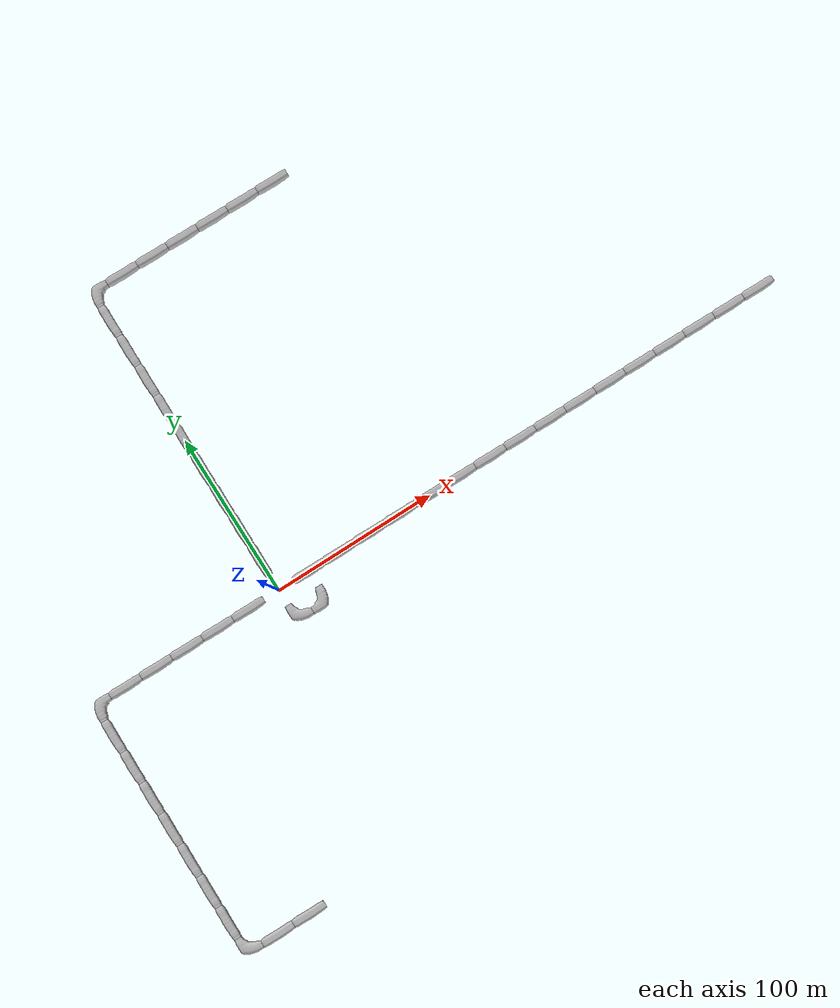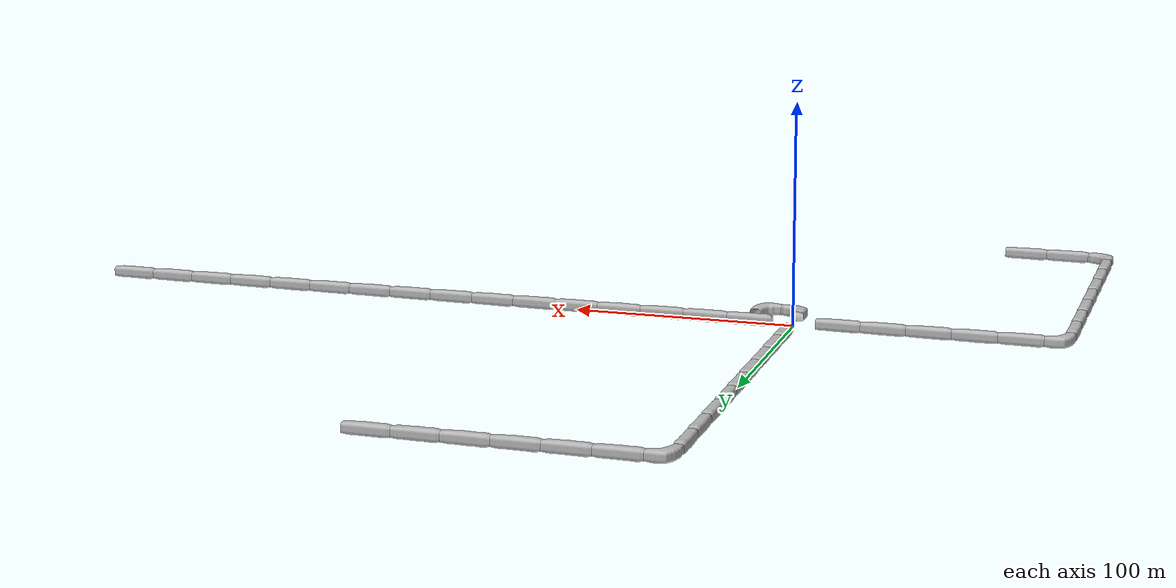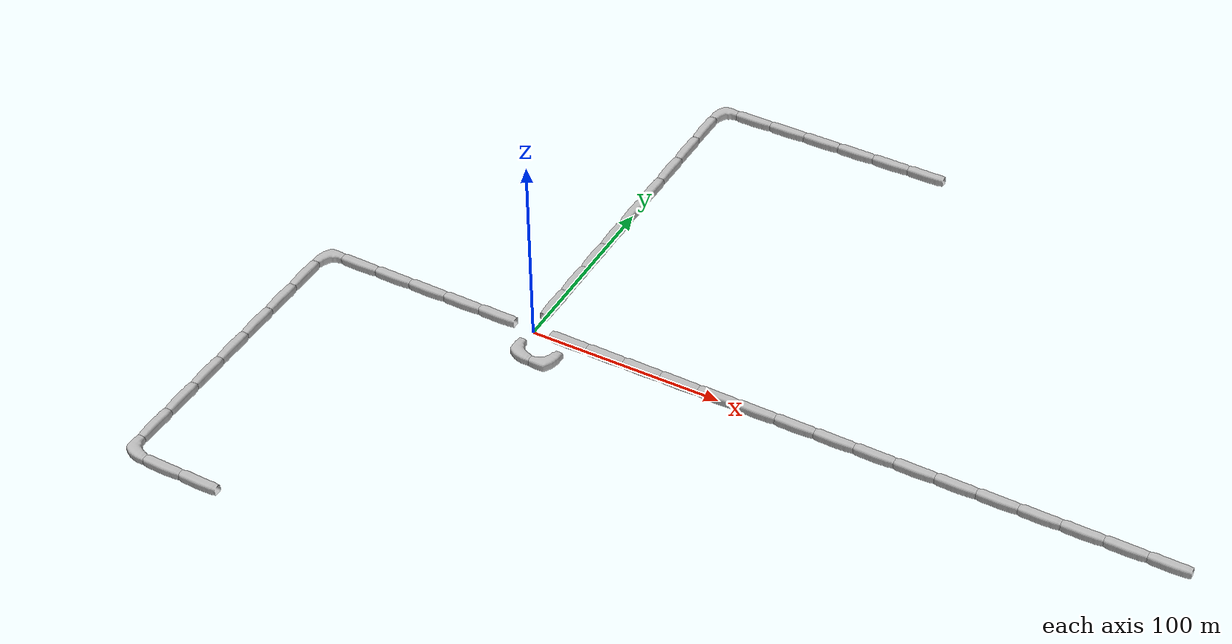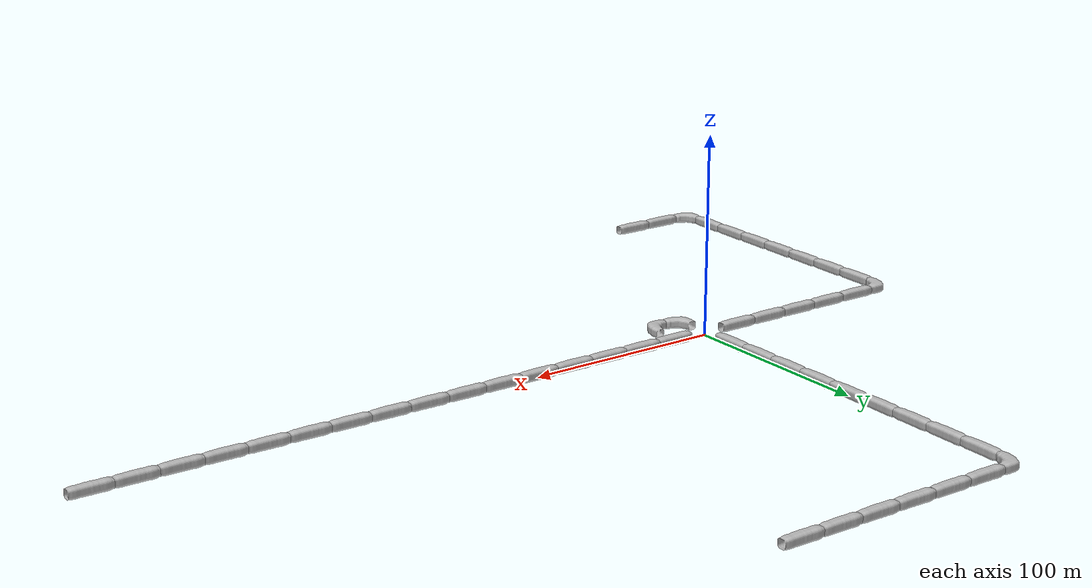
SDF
<sdf version="1.6">
 <world name="cave_1000_64">
  <include>
   <static>true</static>
   <name>cave_1_0</name>
   <pose>20 0 0 0 0 1.5707963267948966</pose>
   <uri>model://cave_straight_20m</uri>
  </include>
  <include>
   <static>true</static>
   <name>cave_2_0</name>
   <pose>40 0 0 0 0 1.5707963267948966</pose>
   <uri>model://cave_straight_20m</uri>
  </include>
  <include>
   <static>true</static>
   <name>cave_3_0</name>
   <pose>60 0 0 0 0 1.5707963267948966</pose>
   <uri>model://cave_straight_20m</uri>
  </include>
  <include>
   <static>true</static>
   <name>cave_4_0</name>
   <pose>80 0 0 0 0 1.5707963267948966</pose>
   <uri>model://cave_straight_20m</uri>
  </include>
  <include>
   <static>true</static>
   <name>cave_5_0</name>
   <pose>100 0 0 0 0 1.5707963267948966</pose>
   <uri>model://cave_straight_20m</uri>
  </include>
  <include>
   <static>true</static>
   <name>cave_6_0</name>
   <pose>120 0 0 0 0 1.5707963267948966</pose>
   <uri>model://cave_straight_20m</uri>
  </include>
  <include>
   <static>true</static>
   <name>cave_7_0</name>
   <pose>140 0 0 0 0 1.5707963267948966</pose>
   <uri>model://cave_straight_20m</uri>
  </include>
  <include>
   <static>true</static>
   <name>cave_8_0</name>
   <pose>160 0 0 0 0 1.5707963267948966</pose>
   <uri>model://cave_straight_20m</uri>
  </include>
  <include>
   <static>true</static>
   <name>cave_9_0</name>
   <pose>180 0 0 0 0 1.5707963267948966</pose>
   <uri>model://cave_straight_20m</uri>
  </include>
  <include>
   <static>true</static>
   <name>cave_10_0</name>
   <pose>200 0 0 0 0 1.5707963267948966</pose>
   <uri>model://cave_straight_20m</uri>
  </include>
  <include>
   <static>true</static>
   <name>cave_11_0</name>
   <pose>220 0 0 0 0 1.5707963267948966</pose>
   <uri>model://cave_straight_20m</uri>
  </include>
  <include>
   <static>true</static>
   <name>cave_12_0</name>
   <pose>240 0 0 0 0 1.5707963267948966</pose>
   <uri>model://cave_straight_20m</uri>
  </include>
  <include>
   <static>true</static>
   <name>cave_13_0</name>
   <pose>260 0 0 0 0 1.5707963267948966</pose>
   <uri>model://cave_straight_20m</uri>
  </include>
  <include>
   <static>true</static>
   <name>cave_14_0</name>
   <pose>280 0 0 0 0 1.5707963267948966</pose>
   <uri>model://cave_straight_20m</uri>
  </include>
  <include>
   <static>true</static>
   <name>cave_15_0</name>
   <pose>300 0 0 0 0 1.5707963267948966</pose>
   <uri>model://cave_straight_20m</uri>
  </include>
  <include>
   <static>true</static>
   <name>cave_16_0</name>
   <pose>320 0 0 0 0 1.5707963267948966</pose>
   <uri>model://cave_straight_20m</uri>
  </include>
  <include>
   <static>true</static>
   <name>cave_0_-1</name>
   <pose>0 -20 0 0 0 0.0</pose>
   <uri>model://cave_L_20m</uri>
  </include>
  <include>
   <static>true</static>
   <name>cave_1_-1</name>
   <pose>20 -20 0 0 0 1.5707963267948966</pose>
   <uri>model://cave_L_20m</uri>
  </include>
  <include>
   <static>true</static>
   <name>cave_-1_0</name>
   <pose>-20 0 0 0 0 1.5707963267948966</pose>
   <uri>model://cave_straight_20m</uri>
  </include>
  <include>
   <static>true</static>
   <name>cave_-2_0</name>
   <pose>-40 0 0 0 0 1.5707963267948966</pose>
   <uri>model://cave_straight_20m</uri>
  </include>
  <include>
   <static>true</static>
   <name>cave_-3_0</name>
   <pose>-60 0 0 0 0 1.5707963267948966</pose>
   <uri>model://cave_straight_20m</uri>
  </include>
  <include>
   <static>true</static>
   <name>cave_-4_0</name>
   <pose>-80 0 0 0 0 1.5707963267948966</pose>
   <uri>model://cave_straight_20m</uri>
  </include>
  <include>
   <static>true</static>
   <name>cave_-5_0</name>
   <pose>-100 0 0 0 0 1.5707963267948966</pose>
   <uri>model://cave_straight_20m</uri>
  </include>
  <include>
   <static>true</static>
   <name>cave_-6_0</name>
   <pose>-120 0 0 0 0 -1.5707963267948966</pose>
   <uri>model://cave_L_20m</uri>
  </include>
  <include>
   <static>true</static>
   <name>cave_-6_-1</name>
   <pose>-120 -20 0 0 0 0.0</pose>
   <uri>model://cave_straight_20m</uri>
  </include>
  <include>
   <static>true</static>
   <name>cave_-6_-2</name>
   <pose>-120 -40 0 0 0 0.0</pose>
   <uri>model://cave_straight_20m</uri>
  </include>
  <include>
   <static>true</static>
   <name>cave_-6_-3</name>
   <pose>-120 -60 0 0 0 0.0</pose>
   <uri>model://cave_straight_20m</uri>
  </include>
  <include>
   <static>true</static>
   <name>cave_-6_-4</name>
   <pose>-120 -80 0 0 0 0.0</pose>
   <uri>model://cave_straight_20m</uri>
  </include>
  <include>
   <static>true</static>
   <name>cave_-6_-5</name>
   <pose>-120 -100 0 0 0 0.0</pose>
   <uri>model://cave_straight_20m</uri>
  </include>
  <include>
   <static>true</static>
   <name>cave_-6_-6</name>
   <pose>-120 -120 0 0 0 0.0</pose>
   <uri>model://cave_straight_20m</uri>
  </include>
  <include>
   <static>true</static>
   <name>cave_-6_-7</name>
   <pose>-120 -140 0 0 0 0.0</pose>
   <uri>model://cave_straight_20m</uri>
  </include>
  <include>
   <static>true</static>
   <name>cave_-6_-8</name>
   <pose>-120 -160 0 0 0 0.0</pose>
   <uri>model://cave_L_20m</uri>
  </include>
  <include>
   <static>true</static>
   <name>cave_-5_-8</name>
   <pose>-100 -160 0 0 0 1.5707963267948966</pose>
   <uri>model://cave_straight_20m</uri>
  </include>
  <include>
   <static>true</static>
   <name>cave_-4_-8</name>
   <pose>-80 -160 0 0 0 1.5707963267948966</pose>
   <uri>model://cave_straight_20m</uri>
  </include>
  <include>
   <static>true</static>
   <name>cave_0_1</name>
   <pose>0 20 0 0 0 0.0</pose>
   <uri>model://cave_straight_20m</uri>
  </include>
  <include>
   <static>true</static>
   <name>cave_0_2</name>
   <pose>0 40 0 0 0 0.0</pose>
   <uri>model://cave_straight_20m</uri>
  </include>
  <include>
   <static>true</static>
   <name>cave_0_3</name>
   <pose>0 60 0 0 0 0.0</pose>
   <uri>model://cave_straight_20m</uri>
  </include>
  <include>
   <static>true</static>
   <name>cave_0_4</name>
   <pose>0 80 0 0 0 0.0</pose>
   <uri>model://cave_straight_20m</uri>
  </include>
  <include>
   <static>true</static>
   <name>cave_0_5</name>
   <pose>0 100 0 0 0 0.0</pose>
   <uri>model://cave_straight_20m</uri>
  </include>
  <include>
   <static>true</static>
   <name>cave_0_6</name>
   <pose>0 120 0 0 0 0.0</pose>
   <uri>model://cave_straight_20m</uri>
  </include>
  <include>
   <static>true</static>
   <name>cave_0_7</name>
   <pose>0 140 0 0 0 0.0</pose>
   <uri>model://cave_straight_20m</uri>
  </include>
  <include>
   <static>true</static>
   <name>cave_0_8</name>
   <pose>0 160 0 0 0 0.0</pose>
   <uri>model://cave_straight_20m</uri>
  </include>
  <include>
   <static>true</static>
   <name>cave_0_9</name>
   <pose>0 180 0 0 0 0.0</pose>
   <uri>model://cave_straight_20m</uri>
  </include>
  <include>
   <static>true</static>
   <name>cave_0_10</name>
   <pose>0 200 0 0 0 -1.5707963267948966</pose>
   <uri>model://cave_L_20m</uri>
  </include>
  <include>
   <static>true</static>
   <name>cave_1_10</name>
   <pose>20 200 0 0 0 1.5707963267948966</pose>
   <uri>model://cave_straight_20m</uri>
  </include>
  <include>
   <static>true</static>
   <name>cave_2_10</name>
   <pose>40 200 0 0 0 1.5707963267948966</pose>
   <uri>model://cave_straight_20m</uri>
  </include>
  <include>
   <static>true</static>
   <name>cave_3_10</name>
   <pose>60 200 0 0 0 1.5707963267948966</pose>
   <uri>model://cave_straight_20m</uri>
  </include>
  <include>
   <static>true</static>
   <name>cave_4_10</name>
   <pose>80 200 0 0 0 1.5707963267948966</pose>
   <uri>model://cave_straight_20m</uri>
  </include>
  <include>
   <static>true</static>
   <name>cave_5_10</name>
   <pose>100 200 0 0 0 1.5707963267948966</pose>
   <uri>model://cave_straight_20m</uri>
  </include>
  <include>
   <static>true</static>
   <name>cave_6_10</name>
   <pose>120 200 0 0 0 1.5707963267948966</pose>
   <uri>model://cave_straight_20m</uri>
  </include>
 </world>
</sdf>

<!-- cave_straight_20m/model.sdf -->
<sdf version="1.6">
  <model name="cave_straight_20m">
    <static>true</static>
    <link name="base">
      <pose>0 0 0 0 0 0</pose>
      <collision name="base_collision">
        <pose>0 0 0 0 0 0</pose>
        <geometry>
          <mesh>
            <uri>model://cave_straight_20m/meshes/cave_straight_20m.dae</uri>
          </mesh>
        </geometry>
        <surface>
          <contact>
             <collide_bitmask>0xffff</collide_bitmask>
          </contact>
          <friction>
            <ode>
              <mu>100</mu>
              <mu2>50</mu2>
            </ode>
          </friction>
        </surface>
      </collision>
      <visual name="base_visual">
        <pose>0 0 0 0 0 0</pose>
        <cast_shadows>false</cast_shadows>
        <geometry>
          <mesh>
            <uri>model://cave_straight_20m/meshes/cave_straight_20m.dae</uri>
          </mesh>
        </geometry>
      </visual>
    </link>
  </model>
</sdf>

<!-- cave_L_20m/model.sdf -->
<sdf version="1.6">
  <model name="cave_L_20m">
    <static>true</static>
    <link name="base">
      <pose>0 0 0 0 0 0</pose>
      <collision name="base_collision">
        <pose>0 0 0 0 0 0</pose>
        <geometry>
          <mesh>
            <uri>model://cave_L_20m/meshes/cave_L_20m.dae</uri>
          </mesh>
        </geometry>
        <surface>
          <contact>
             <collide_bitmask>0xffff</collide_bitmask>
          </contact>
          <friction>
            <ode>
              <mu>100</mu>
              <mu2>50</mu2>
            </ode>
          </friction>
        </surface>
      </collision>
      <visual name="base_visual">
        <pose>0 0 0 0 0 0</pose>
        <cast_shadows>false</cast_shadows>
        <geometry>
          <mesh>
            <uri>model://cave_L_20m/meshes/cave_L_20m.dae</uri>
          </mesh>
        </geometry>
      </visual>
    </link>
  </model>
</sdf>
